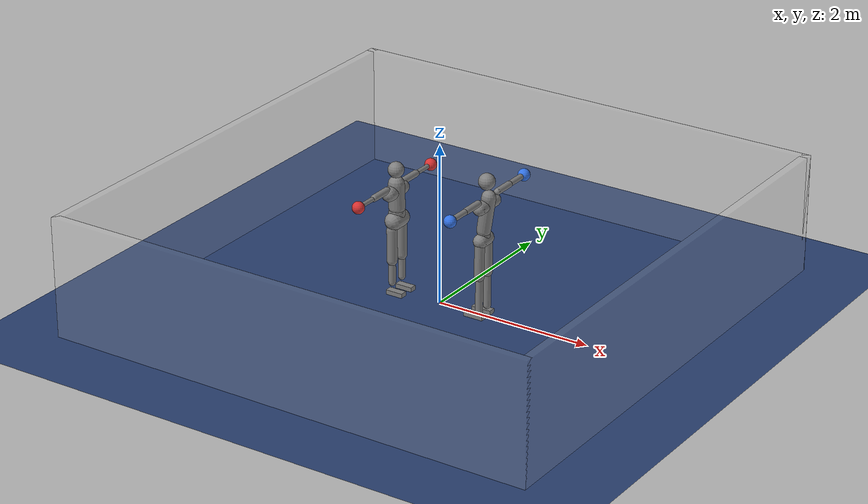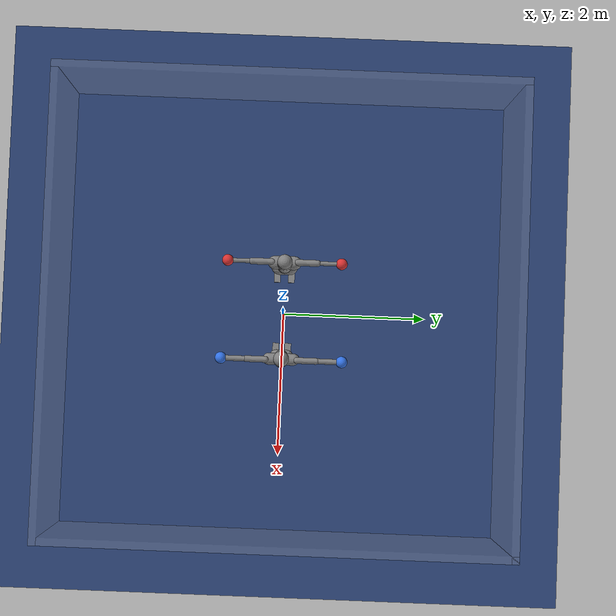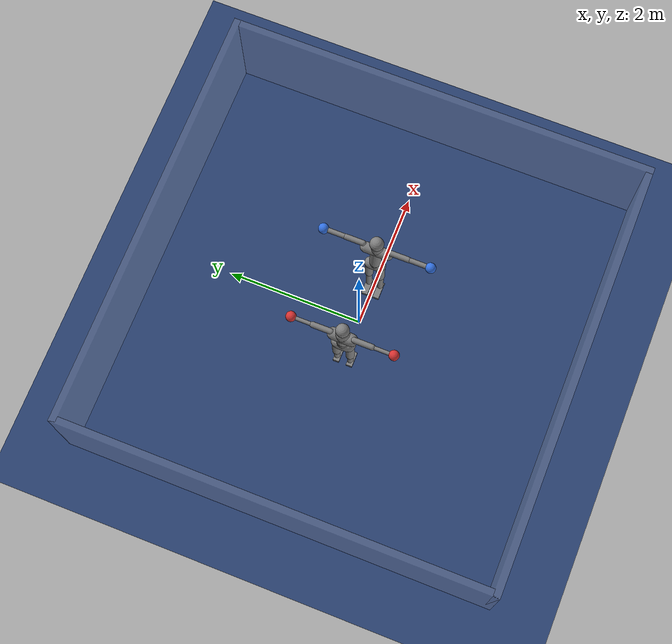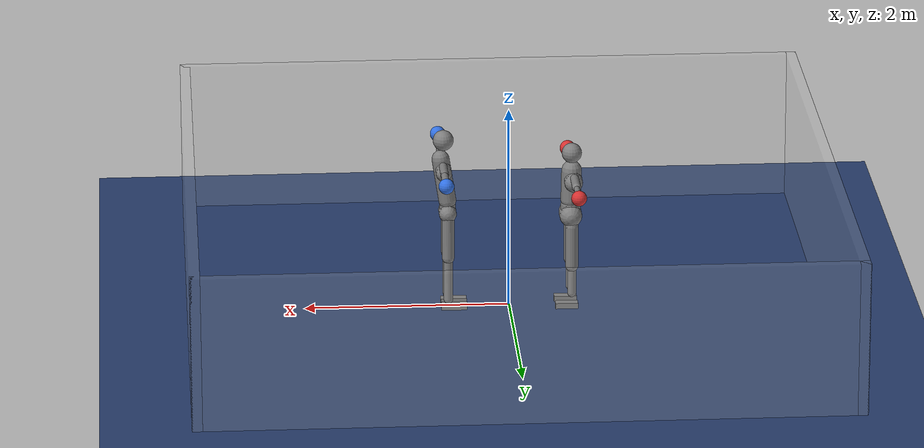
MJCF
<mujoco model="nick_vs_matt_spar">
  <compiler angle="degree" inertiafromgeom="true" autolimits="true"/>
  <option timestep="0.005" iterations="10" ls_iterations="10" integrator="implicitfast">
    <flag eulerdamp="disable"/>
  </option>
  <default>
    <geom contype="1" conaffinity="1" condim="3" friction="1.0 0.005 0.0001" density="1000" margin="0"/>
    <joint limited="true"/>
    <position ctrllimited="true"/>
  </default>
  <asset>
    <texture name="grid" type="2d" builtin="checker" rgb1=".18 .28 .48" rgb2=".14 .22 .40" width="300" height="300"/>
    <material name="grid" texture="grid" texrepeat="6 6" reflectance="0"/>
  </asset>
  <worldbody>
    <light pos="0 0 5" dir="0 0 -1" directional="true"/>
    <geom name="floor" type="plane" size="0 0 0.05" material="grid" friction="1.0 0.005 0.0001"/>
    <geom name="rope_n" type="box" pos="0.0000 3.1000 0.7500" size="3.1500 0.0500 0.7500" rgba="0.8 0.8 0.8 0.15"/>
    <geom name="rope_s" type="box" pos="0.0000 -3.1000 0.7500" size="3.1500 0.0500 0.7500" rgba="0.8 0.8 0.8 0.15"/>
    <geom name="rope_e" type="box" pos="3.1000 0.0000 0.7500" size="0.0500 3.1500 0.7500" rgba="0.8 0.8 0.8 0.15"/>
    <geom name="rope_w" type="box" pos="-3.1000 0.0000 0.7500" size="0.0500 3.1500 0.7500" rgba="0.8 0.8 0.8 0.15"/>
    <body name="a_pelvis" pos="-0.6000 0.0000 0.9269" quat="1.00000 0 0 0.00000">
      <freejoint name="a_root"/>
      <geom name="a_pelvis_geom" type="capsule" fromto="0.0000 -0.0700 0.0000 0.0000 0.0700 0.0000" size="0.1090" mass="4.9049" />
      <geom name="a_pelvis_up" type="capsule" fromto="0.0000 0.0000 0.0000 -0.0026 0.0000 0.1033" size="0.0981" mass="3.2601" />
      <body name="a_torso" pos="-0.0026 0.0000 0.1233">
        <joint name="a_abdomen_z" type="hinge" axis="0 0 1" range="-45 45" damping="0.5" armature="0.08" stiffness="0"/>
        <joint name="a_abdomen_y" type="hinge" axis="0 1 0" range="-60 30" damping="0.5" armature="0.08" stiffness="0"/>
        <joint name="a_abdomen_x" type="hinge" axis="1 0 0" range="-35 35" damping="0.5" armature="0.08" stiffness="0"/>
        <geom name="a_torso_geom" type="capsule" fromto="0.0000 0.0000 0.0200 -0.0072 0.0000 0.3240" size="0.0987" mass="20.4125" />
        <geom name="a_chest_geom" type="capsule" fromto="-0.0187 -0.1313 0.2370 -0.0187 0.1313 0.2370" size="0.0888" mass="0.5"/>
        <geom name="a_head_geom" type="sphere" pos="-0.0087 0.0000 0.5025" size="0.0973" mass="4.6575" />
        <body name="a_upper_arm_l" pos="-0.0234 0.1641 0.2962">
          <joint name="a_shoulder_x_l" type="hinge" axis="1 0 0" range="-170 30" damping="0.5" armature="0.03" stiffness="0"/>
          <joint name="a_shoulder_z_l" type="hinge" axis="0 0 1" range="-110 110" damping="0.5" armature="0.03" stiffness="0"/>
          <geom name="a_upper_arm_l_geom" type="capsule" fromto="0.0000 0.0000 0.0000 0.0000 0.2664 0.0000" size="0.0419" mass="1.6100" />
          <body name="a_forearm_l" pos="0.0000 0.2664 0.0000">
            <joint name="a_elbow_l" type="hinge" axis="0 0 1" range="-150 0" damping="0.5" armature="0.02" stiffness="0"/>
            <geom name="a_forearm_l_geom" type="capsule" fromto="0.0000 0.0000 0.0000 0.0000 0.2467 0.0000" size="0.0280" mass="0.9200" />
            <geom name="a_glove_l" type="sphere" pos="0.0000 0.3142 0.0000" size="0.0750" mass="0.6280" rgba="0.85 0.2 0.2 1"/>
          </body>
        </body>
        <body name="a_upper_arm_r" pos="-0.0234 -0.1641 0.2962">
          <joint name="a_shoulder_x_r" type="hinge" axis="1 0 0" range="-30 170" damping="0.5" armature="0.03" stiffness="0"/>
          <joint name="a_shoulder_z_r" type="hinge" axis="0 0 1" range="-110 110" damping="0.5" armature="0.03" stiffness="0"/>
          <geom name="a_upper_arm_r_geom" type="capsule" fromto="0.0000 0.0000 0.0000 0.0000 -0.2664 0.0000" size="0.0419" mass="1.6100" />
          <body name="a_forearm_r" pos="0.0000 -0.2664 0.0000">
            <joint name="a_elbow_r" type="hinge" axis="0 0 1" range="0 150" damping="0.5" armature="0.02" stiffness="0"/>
            <geom name="a_forearm_r_geom" type="capsule" fromto="0.0000 0.0000 0.0000 0.0000 -0.2467 0.0000" size="0.0280" mass="0.9200" />
            <geom name="a_glove_r" type="sphere" pos="0.0000 -0.3142 0.0000" size="0.0750" mass="0.6280" rgba="0.85 0.2 0.2 1"/>
          </body>
        </body>
      </body>
      <body name="a_thigh_l" pos="-0.0079 0.1002 -0.0993">
        <joint name="a_hip_x_l" type="hinge" axis="1 0 0" range="-40 40" damping="0.5" armature="0.1" stiffness="0"/>
        <joint name="a_hip_z_l" type="hinge" axis="0 0 1" range="-35 35" damping="0.5" armature="0.1" stiffness="0"/>
        <joint name="a_hip_y_l" type="hinge" axis="0 1 0" range="-120 30" damping="0.5" armature="0.1" stiffness="0"/>
        <geom name="a_thigh_l_geom" type="capsule" fromto="0.0000 0.0000 0.0000 0.0000 0.0000 -0.4004" size="0.0639" mass="5.7500" />
        <body name="a_shin_l" pos="0.0000 0.0000 -0.4004">
          <joint name="a_knee_l" type="hinge" axis="0 1 0" range="0 150" damping="0.5" armature="0.1" stiffness="0"/>
          <geom name="a_shin_l_geom" type="capsule" fromto="0.0000 0.0000 0.0000 0.0000 0.0000 -0.2841" size="0.0429" mass="2.6738" />
          <body name="a_foot_l" pos="0.0000 0.0000 -0.2841">
            <joint name="a_ankle_y_l" type="hinge" axis="0 1 0" range="-20 50" damping="0.5" armature="0.03" stiffness="0"/>
            <joint name="a_ankle_x_l" type="hinge" axis="1 0 0" range="-25 25" damping="0.5" armature="0.03" stiffness="0"/>
            <geom name="a_foot_l_geom" type="box" pos="0.0506 0.0000 -0.1233" size="0.1100 0.0450 0.0280" mass="0.8337" friction="1.0 0.005 0.0001"/>
            <site name="a_foot_l_site" pos="0.0506 0.0000 -0.1233" size="0.01"/>
          </body>
        </body>
      </body>
      <body name="a_thigh_r" pos="-0.0079 -0.1002 -0.0993">
        <joint name="a_hip_x_r" type="hinge" axis="1 0 0" range="-40 40" damping="0.5" armature="0.1" stiffness="0"/>
        <joint name="a_hip_z_r" type="hinge" axis="0 0 1" range="-35 35" damping="0.5" armature="0.1" stiffness="0"/>
        <joint name="a_hip_y_r" type="hinge" axis="0 1 0" range="-120 30" damping="0.5" armature="0.1" stiffness="0"/>
        <geom name="a_thigh_r_geom" type="capsule" fromto="0.0000 0.0000 0.0000 0.0000 0.0000 -0.4004" size="0.0639" mass="5.7500" />
        <body name="a_shin_r" pos="0.0000 0.0000 -0.4004">
          <joint name="a_knee_r" type="hinge" axis="0 1 0" range="0 150" damping="0.5" armature="0.1" stiffness="0"/>
          <geom name="a_shin_r_geom" type="capsule" fromto="0.0000 0.0000 0.0000 0.0000 0.0000 -0.2841" size="0.0429" mass="2.6738" />
          <body name="a_foot_r" pos="0.0000 0.0000 -0.2841">
            <joint name="a_ankle_y_r" type="hinge" axis="0 1 0" range="-20 50" damping="0.5" armature="0.03" stiffness="0"/>
            <joint name="a_ankle_x_r" type="hinge" axis="1 0 0" range="-25 25" damping="0.5" armature="0.03" stiffness="0"/>
            <geom name="a_foot_r_geom" type="box" pos="0.0506 0.0000 -0.1233" size="0.1100 0.0450 0.0280" mass="0.8337" friction="1.0 0.005 0.0001"/>
            <site name="a_foot_r_site" pos="0.0506 0.0000 -0.1233" size="0.01"/>
          </body>
        </body>
      </body>
    </body>
    <body name="b_pelvis" pos="0.6000 0.0000 0.9741" quat="0.00000 0 0 1.00000">
      <freejoint name="b_root"/>
      <geom name="b_pelvis_geom" type="capsule" fromto="0.0000 -0.0700 0.0000 0.0000 0.0700 0.0000" size="0.0850" mass="7.0977" />
      <geom name="b_pelvis_up" type="capsule" fromto="0.0000 0.0000 0.0000 -0.0008 0.0000 0.0758" size="0.0765" mass="4.0351" />
      <body name="b_torso" pos="-0.0008 0.0000 0.0958">
        <joint name="b_abdomen_z" type="hinge" axis="0 0 1" range="-45 45" damping="0.5" armature="0.08" stiffness="0"/>
        <joint name="b_abdomen_y" type="hinge" axis="0 1 0" range="-60 30" damping="0.5" armature="0.08" stiffness="0"/>
        <joint name="b_abdomen_x" type="hinge" axis="1 0 0" range="-35 35" damping="0.5" armature="0.08" stiffness="0"/>
        <geom name="b_torso_geom" type="capsule" fromto="0.0000 0.0000 0.0200 -0.0653 -0.0000 0.4511" size="0.0850" mass="27.8320" />
        <geom name="b_chest_geom" type="capsule" fromto="-0.0402 -0.1614 0.3530 -0.0402 0.1614 0.3530" size="0.0765" mass="0.5"/>
        <geom name="b_head_geom" type="sphere" pos="-0.0385 -0.0000 0.6398" size="0.1000" mass="6.3504" />
        <body name="b_upper_arm_l" pos="-0.0503 0.2018 0.4412">
          <joint name="b_shoulder_x_l" type="hinge" axis="1 0 0" range="-170 30" damping="0.5" armature="0.03" stiffness="0"/>
          <joint name="b_shoulder_z_l" type="hinge" axis="0 0 1" range="-110 110" damping="0.5" armature="0.03" stiffness="0"/>
          <geom name="b_upper_arm_l_geom" type="capsule" fromto="0.0000 0.0000 0.0000 0.0000 0.2524 0.0000" size="0.0400" mass="2.1952" />
          <body name="b_forearm_l" pos="0.0000 0.2524 0.0000">
            <joint name="b_elbow_l" type="hinge" axis="0 0 1" range="-150 0" damping="0.5" armature="0.02" stiffness="0"/>
            <geom name="b_forearm_l_geom" type="capsule" fromto="0.0000 0.0000 0.0000 0.0000 0.2567 0.0000" size="0.0350" mass="1.2544" />
            <geom name="b_glove_l" type="sphere" pos="0.0000 0.3242 0.0000" size="0.0750" mass="0.7534" rgba="0.2 0.45 0.9 1"/>
          </body>
        </body>
        <body name="b_upper_arm_r" pos="-0.0503 -0.2018 0.4412">
          <joint name="b_shoulder_x_r" type="hinge" axis="1 0 0" range="-30 170" damping="0.5" armature="0.03" stiffness="0"/>
          <joint name="b_shoulder_z_r" type="hinge" axis="0 0 1" range="-110 110" damping="0.5" armature="0.03" stiffness="0"/>
          <geom name="b_upper_arm_r_geom" type="capsule" fromto="0.0000 0.0000 0.0000 0.0000 -0.2524 0.0000" size="0.0400" mass="2.1952" />
          <body name="b_forearm_r" pos="0.0000 -0.2524 0.0000">
            <joint name="b_elbow_r" type="hinge" axis="0 0 1" range="0 150" damping="0.5" armature="0.02" stiffness="0"/>
            <geom name="b_forearm_r_geom" type="capsule" fromto="0.0000 0.0000 0.0000 0.0000 -0.2567 0.0000" size="0.0350" mass="1.2544" />
            <geom name="b_glove_r" type="sphere" pos="0.0000 -0.3242 0.0000" size="0.0750" mass="0.7534" rgba="0.2 0.45 0.9 1"/>
          </body>
        </body>
      </body>
      <body name="b_thigh_l" pos="0.0008 0.0857 -0.0302">
        <joint name="b_hip_x_l" type="hinge" axis="1 0 0" range="-40 40" damping="0.5" armature="0.1" stiffness="0"/>
        <joint name="b_hip_z_l" type="hinge" axis="0 0 1" range="-35 35" damping="0.5" armature="0.1" stiffness="0"/>
        <joint name="b_hip_y_l" type="hinge" axis="0 1 0" range="-120 30" damping="0.5" armature="0.1" stiffness="0"/>
        <geom name="b_thigh_l_geom" type="capsule" fromto="0.0000 0.0000 0.0000 0.0000 0.0000 -0.4154" size="0.0600" mass="7.8400" />
        <body name="b_shin_l" pos="0.0000 0.0000 -0.4154">
          <joint name="b_knee_l" type="hinge" axis="0 1 0" range="0 150" damping="0.5" armature="0.1" stiffness="0"/>
          <geom name="b_shin_l_geom" type="capsule" fromto="0.0000 0.0000 0.0000 0.0000 0.0000 -0.4309" size="0.0450" mass="3.6456" />
          <body name="b_foot_l" pos="0.0000 0.0000 -0.4309">
            <joint name="b_ankle_y_l" type="hinge" axis="0 1 0" range="-20 50" damping="0.5" armature="0.03" stiffness="0"/>
            <joint name="b_ankle_x_l" type="hinge" axis="1 0 0" range="-25 25" damping="0.5" armature="0.03" stiffness="0"/>
            <geom name="b_foot_l_geom" type="box" pos="0.0581 0.0000 -0.0708" size="0.1262 0.0450 0.0280" mass="1.1368" friction="1.0 0.005 0.0001"/>
            <site name="b_foot_l_site" pos="0.0581 0.0000 -0.0708" size="0.01"/>
          </body>
        </body>
      </body>
      <body name="b_thigh_r" pos="0.0008 -0.0857 -0.0302">
        <joint name="b_hip_x_r" type="hinge" axis="1 0 0" range="-40 40" damping="0.5" armature="0.1" stiffness="0"/>
        <joint name="b_hip_z_r" type="hinge" axis="0 0 1" range="-35 35" damping="0.5" armature="0.1" stiffness="0"/>
        <joint name="b_hip_y_r" type="hinge" axis="0 1 0" range="-120 30" damping="0.5" armature="0.1" stiffness="0"/>
        <geom name="b_thigh_r_geom" type="capsule" fromto="0.0000 0.0000 0.0000 0.0000 0.0000 -0.4154" size="0.0600" mass="7.8400" />
        <body name="b_shin_r" pos="0.0000 0.0000 -0.4154">
          <joint name="b_knee_r" type="hinge" axis="0 1 0" range="0 150" damping="0.5" armature="0.1" stiffness="0"/>
          <geom name="b_shin_r_geom" type="capsule" fromto="0.0000 0.0000 0.0000 0.0000 0.0000 -0.4309" size="0.0450" mass="3.6456" />
          <body name="b_foot_r" pos="0.0000 0.0000 -0.4309">
            <joint name="b_ankle_y_r" type="hinge" axis="0 1 0" range="-20 50" damping="0.5" armature="0.03" stiffness="0"/>
            <joint name="b_ankle_x_r" type="hinge" axis="1 0 0" range="-25 25" damping="0.5" armature="0.03" stiffness="0"/>
            <geom name="b_foot_r_geom" type="box" pos="0.0581 0.0000 -0.0708" size="0.1262 0.0450 0.0280" mass="1.1368" friction="1.0 0.005 0.0001"/>
            <site name="b_foot_r_site" pos="0.0581 0.0000 -0.0708" size="0.01"/>
          </body>
        </body>
      </body>
    </body>
  </worldbody>
  <contact>
    <exclude body1="a_pelvis" body2="a_torso"/>
    <exclude body1="a_pelvis" body2="a_thigh_l"/>
    <exclude body1="a_thigh_l" body2="a_shin_l"/>
    <exclude body1="a_shin_l" body2="a_foot_l"/>
    <exclude body1="a_torso" body2="a_upper_arm_l"/>
    <exclude body1="a_upper_arm_l" body2="a_forearm_l"/>
    <exclude body1="a_pelvis" body2="a_thigh_r"/>
    <exclude body1="a_thigh_r" body2="a_shin_r"/>
    <exclude body1="a_shin_r" body2="a_foot_r"/>
    <exclude body1="a_torso" body2="a_upper_arm_r"/>
    <exclude body1="a_upper_arm_r" body2="a_forearm_r"/>
    <exclude body1="b_pelvis" body2="b_torso"/>
    <exclude body1="b_pelvis" body2="b_thigh_l"/>
    <exclude body1="b_thigh_l" body2="b_shin_l"/>
    <exclude body1="b_shin_l" body2="b_foot_l"/>
    <exclude body1="b_torso" body2="b_upper_arm_l"/>
    <exclude body1="b_upper_arm_l" body2="b_forearm_l"/>
    <exclude body1="b_pelvis" body2="b_thigh_r"/>
    <exclude body1="b_thigh_r" body2="b_shin_r"/>
    <exclude body1="b_shin_r" body2="b_foot_r"/>
    <exclude body1="b_torso" body2="b_upper_arm_r"/>
    <exclude body1="b_upper_arm_r" body2="b_forearm_r"/>
  </contact>
  <actuator>
    <position name="a_abdomen_z" joint="a_abdomen_z" kp="373.95" kv="17.451" forcerange="-141.27 141.27" ctrlrange="-0.7854 0.7854"/>
    <position name="a_abdomen_y" joint="a_abdomen_y" kp="373.95" kv="17.451" forcerange="-141.27 141.27" ctrlrange="-1.0472 0.5236"/>
    <position name="a_abdomen_x" joint="a_abdomen_x" kp="373.95" kv="17.451" forcerange="-141.27 141.27" ctrlrange="-0.6109 0.6109"/>
    <position name="a_shoulder_x_l" joint="a_shoulder_x_l" kp="132.96" kv="6.648" forcerange="-83.1 83.1" ctrlrange="-2.9671 0.5236"/>
    <position name="a_shoulder_z_l" joint="a_shoulder_z_l" kp="132.96" kv="6.648" forcerange="-83.1 83.1" ctrlrange="-1.9199 1.9199"/>
    <position name="a_elbow_l" joint="a_elbow_l" kp="91.41" kv="4.571" forcerange="-58.17 58.17" ctrlrange="-2.6180 0.0000"/>
    <position name="a_shoulder_x_r" joint="a_shoulder_x_r" kp="132.96" kv="6.648" forcerange="-83.1 83.1" ctrlrange="-0.5236 2.9671"/>
    <position name="a_shoulder_z_r" joint="a_shoulder_z_r" kp="132.96" kv="6.648" forcerange="-83.1 83.1" ctrlrange="-1.9199 1.9199"/>
    <position name="a_elbow_r" joint="a_elbow_r" kp="91.41" kv="4.571" forcerange="-58.17 58.17" ctrlrange="0.0000 2.6180"/>
    <position name="a_hip_x_l" joint="a_hip_x_l" kp="498.6" kv="24.93" forcerange="-199.44 199.44" ctrlrange="-0.6981 0.6981"/>
    <position name="a_hip_z_l" joint="a_hip_z_l" kp="498.6" kv="24.93" forcerange="-199.44 199.44" ctrlrange="-0.6109 0.6109"/>
    <position name="a_hip_y_l" joint="a_hip_y_l" kp="498.6" kv="24.93" forcerange="-199.44 199.44" ctrlrange="-2.0944 0.5236"/>
    <position name="a_knee_l" joint="a_knee_l" kp="498.6" kv="24.93" forcerange="-216.06 216.06" ctrlrange="0.0000 2.6180"/>
    <position name="a_ankle_y_l" joint="a_ankle_y_l" kp="623.25" kv="24.93" forcerange="-182.82 182.82" ctrlrange="-0.3491 0.8727"/>
    <position name="a_ankle_x_l" joint="a_ankle_x_l" kp="66.48" kv="3.324" forcerange="-49.86 49.86" ctrlrange="-0.4363 0.4363"/>
    <position name="a_hip_x_r" joint="a_hip_x_r" kp="498.6" kv="24.93" forcerange="-199.44 199.44" ctrlrange="-0.6981 0.6981"/>
    <position name="a_hip_z_r" joint="a_hip_z_r" kp="498.6" kv="24.93" forcerange="-199.44 199.44" ctrlrange="-0.6109 0.6109"/>
    <position name="a_hip_y_r" joint="a_hip_y_r" kp="498.6" kv="24.93" forcerange="-199.44 199.44" ctrlrange="-2.0944 0.5236"/>
    <position name="a_knee_r" joint="a_knee_r" kp="498.6" kv="24.93" forcerange="-216.06 216.06" ctrlrange="0.0000 2.6180"/>
    <position name="a_ankle_y_r" joint="a_ankle_y_r" kp="623.25" kv="24.93" forcerange="-182.82 182.82" ctrlrange="-0.3491 0.8727"/>
    <position name="a_ankle_x_r" joint="a_ankle_x_r" kp="66.48" kv="3.324" forcerange="-49.86 49.86" ctrlrange="-0.4363 0.4363"/>
    <position name="b_abdomen_z" joint="b_abdomen_z" kp="450.0" kv="21.0" forcerange="-170.0 170.0" ctrlrange="-0.7854 0.7854"/>
    <position name="b_abdomen_y" joint="b_abdomen_y" kp="450.0" kv="21.0" forcerange="-170.0 170.0" ctrlrange="-1.0472 0.5236"/>
    <position name="b_abdomen_x" joint="b_abdomen_x" kp="450.0" kv="21.0" forcerange="-170.0 170.0" ctrlrange="-0.6109 0.6109"/>
    <position name="b_shoulder_x_l" joint="b_shoulder_x_l" kp="160.0" kv="8.0" forcerange="-100.0 100.0" ctrlrange="-2.9671 0.5236"/>
    <position name="b_shoulder_z_l" joint="b_shoulder_z_l" kp="160.0" kv="8.0" forcerange="-100.0 100.0" ctrlrange="-1.9199 1.9199"/>
    <position name="b_elbow_l" joint="b_elbow_l" kp="110.0" kv="5.5" forcerange="-70.0 70.0" ctrlrange="-2.6180 0.0000"/>
    <position name="b_shoulder_x_r" joint="b_shoulder_x_r" kp="160.0" kv="8.0" forcerange="-100.0 100.0" ctrlrange="-0.5236 2.9671"/>
    <position name="b_shoulder_z_r" joint="b_shoulder_z_r" kp="160.0" kv="8.0" forcerange="-100.0 100.0" ctrlrange="-1.9199 1.9199"/>
    <position name="b_elbow_r" joint="b_elbow_r" kp="110.0" kv="5.5" forcerange="-70.0 70.0" ctrlrange="0.0000 2.6180"/>
    <position name="b_hip_x_l" joint="b_hip_x_l" kp="600.0" kv="30.0" forcerange="-240.0 240.0" ctrlrange="-0.6981 0.6981"/>
    <position name="b_hip_z_l" joint="b_hip_z_l" kp="600.0" kv="30.0" forcerange="-240.0 240.0" ctrlrange="-0.6109 0.6109"/>
    <position name="b_hip_y_l" joint="b_hip_y_l" kp="600.0" kv="30.0" forcerange="-240.0 240.0" ctrlrange="-2.0944 0.5236"/>
    <position name="b_knee_l" joint="b_knee_l" kp="600.0" kv="30.0" forcerange="-260.0 260.0" ctrlrange="0.0000 2.6180"/>
    <position name="b_ankle_y_l" joint="b_ankle_y_l" kp="750.0" kv="30.0" forcerange="-220.0 220.0" ctrlrange="-0.3491 0.8727"/>
    <position name="b_ankle_x_l" joint="b_ankle_x_l" kp="80.0" kv="4.0" forcerange="-60.0 60.0" ctrlrange="-0.4363 0.4363"/>
    <position name="b_hip_x_r" joint="b_hip_x_r" kp="600.0" kv="30.0" forcerange="-240.0 240.0" ctrlrange="-0.6981 0.6981"/>
    <position name="b_hip_z_r" joint="b_hip_z_r" kp="600.0" kv="30.0" forcerange="-240.0 240.0" ctrlrange="-0.6109 0.6109"/>
    <position name="b_hip_y_r" joint="b_hip_y_r" kp="600.0" kv="30.0" forcerange="-240.0 240.0" ctrlrange="-2.0944 0.5236"/>
    <position name="b_knee_r" joint="b_knee_r" kp="600.0" kv="30.0" forcerange="-260.0 260.0" ctrlrange="0.0000 2.6180"/>
    <position name="b_ankle_y_r" joint="b_ankle_y_r" kp="750.0" kv="30.0" forcerange="-220.0 220.0" ctrlrange="-0.3491 0.8727"/>
    <position name="b_ankle_x_r" joint="b_ankle_x_r" kp="80.0" kv="4.0" forcerange="-60.0 60.0" ctrlrange="-0.4363 0.4363"/>
  </actuator>
  <keyframe>
    <key name="stand" qpos="-0.6000 0.0000 0.9199 1.00000 0 0 0.00000 0.0000 0.0000 0.0000 -1.3265 -0.7330 -1.9548 1.3265 0.7330 1.9548 0.0000 0.0000 -0.1635 0.4538 -0.2902 0.0000 0.0000 0.0000 -0.1635 0.4538 -0.2902 0.0000 0.6000 0.0000 0.9544 0.00000 0 0 1.00000 0.0000 0.0000 0.0000 -1.3265 -0.7330 -1.9548 1.3265 0.7330 1.9548 0.0000 0.0000 -0.1765 0.4538 -0.2773 0.0000 0.0000 0.0000 -0.1765 0.4538 -0.2773 0.0000"/>
  </keyframe>
</mujoco>
